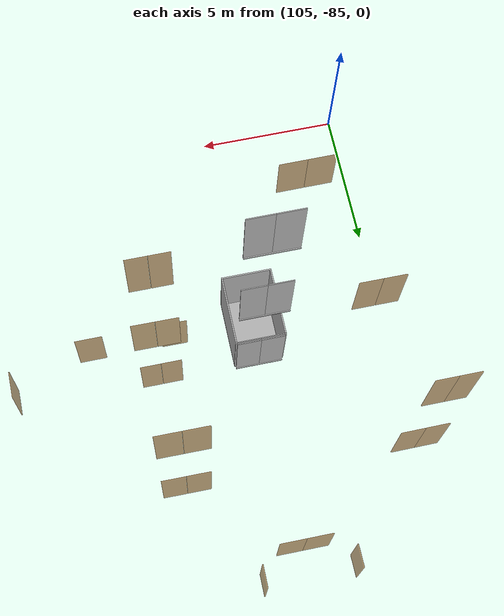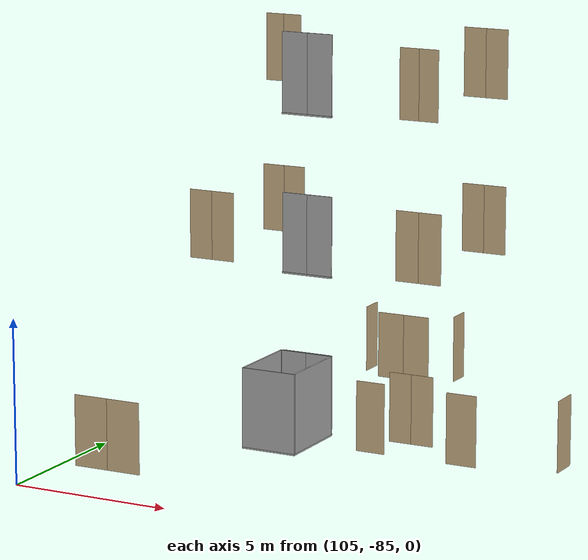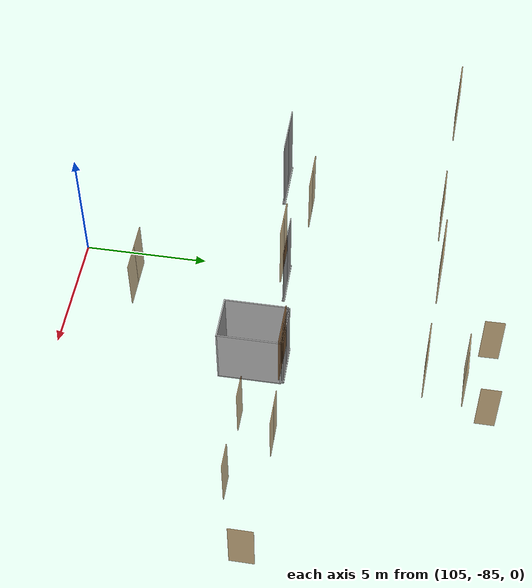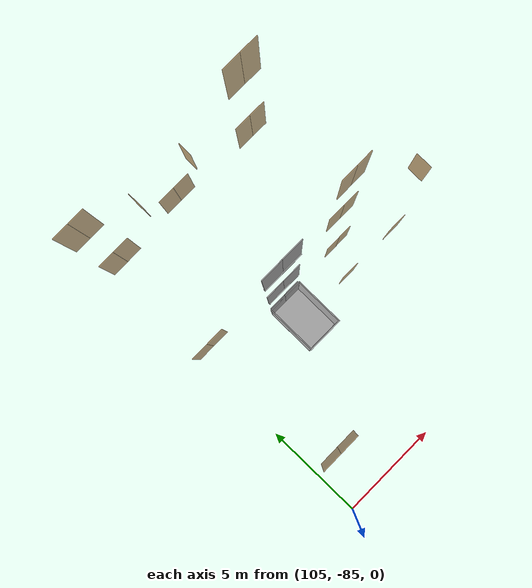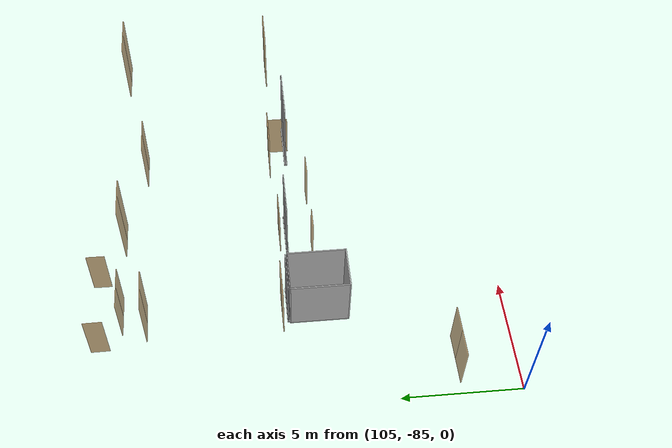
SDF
<sdf version="1.7">
 <world name="sim_world">
  <model name="p148">
   <pose>106.5831086486327 -82.50074442238754 0.0 0 0 -3.1354312213348186</pose>
   <link name="right">
    <pose>0.5509052453455562 0 1.11 0 0 0</pose>
    <visual name="right_visual">
     <geometry><box><size>1.0918104906911124 0.03 2.2</size></box></geometry>
     <material>
      <ambient>0.5 0.25 0 0.6</ambient>
      <diffuse>0.5 0.25 0 0.6</diffuse>
      <pbr><metal><metalness>0.0</metalness></metal></pbr>
     </material>
    </visual>
    <collision name="right_collision">
     <geometry><box><size>1.0918104906911124 0.03 2.2</size></box></geometry>
     <surface><contact><collide_bitmask>0x02</collide_bitmask></contact></surface>
    </collision>
    <inertial>
     <mass>50.0</mass>
     <inertia><ixx>20.17041666666667</ixx><iyy>25.133542281596537</iyy><izz>4.970625614929864</izz></inertia>
    </inertial>
   </link>
   <joint name="right_joint" type="revolute">
    <parent>world</parent>
    <child>right</child>
    <axis><xyz>0 0 -1</xyz><limit><lower>0</lower><upper>1.57</upper></limit></axis>
    <pose>0.5509052453455562 0 0 0 0 0</pose>
   </joint>
   <link name="left">
    <pose>-0.5509052453455562 0 1.11 0 0 0</pose>
    <visual name="left_visual">
     <geometry><box><size>1.0918104906911124 0.03 2.2</size></box></geometry>
     <material>
      <ambient>0.5 0.25 0 0.6</ambient>
      <diffuse>0.5 0.25 0 0.6</diffuse>
      <pbr><metal><metalness>0.0</metalness></metal></pbr>
     </material>
    </visual>
    <collision name="left_collision">
     <geometry><box><size>1.0918104906911124 0.03 2.2</size></box></geometry>
     <surface><contact><collide_bitmask>0x02</collide_bitmask></contact></surface>
    </collision>
    <inertial>
     <mass>50.0</mass>
     <inertia><ixx>20.17041666666667</ixx><iyy>25.133542281596537</iyy><izz>4.970625614929864</izz></inertia>
    </inertial>
   </link>
   <joint name="left_joint" type="revolute">
    <parent>world</parent>
    <child>left</child>
    <axis><xyz>0 0 -1</xyz><limit><lower>-1.57</lower><upper>0</upper></limit></axis>
    <pose>-0.5509052453455562 0 0 0 0 0</pose>
   </joint>
   <plugin name="register_component" filename="libregister_component.so">
    <component name="Door">
     <v_max_door>0.5</v_max_door>
     <a_max_door>0.3</a_max_door>
     <a_nom_door>0.15</a_nom_door>
     <dx_min_door>0.01</dx_min_door>
     <f_max_door>500.0</f_max_door>
     <ros_interface>true</ros_interface>
     <door name="p148" type="DoubleSwingDoor" left_joint_name="left_joint" right_joint_name="right_joint"/>
    </component>
   </plugin>
  </model>
  <model name="p151">
   <pose>109.79853559894529 -68.9253577671773 0.0 0 0 -0.0006766634620177149</pose>
   <link name="right">
    <pose>0.45975870500083904 0 1.11 0 0 0</pose>
    <visual name="right_visual">
     <geometry><box><size>0.9095174100016781 0.03 2.2</size></box></geometry>
     <material>
      <ambient>0.5 0.25 0 0.6</ambient>
      <diffuse>0.5 0.25 0 0.6</diffuse>
      <pbr><metal><metalness>0.0</metalness></metal></pbr>
     </material>
    </visual>
    <collision name="right_collision">
     <geometry><box><size>0.9095174100016781 0.03 2.2</size></box></geometry>
     <surface><contact><collide_bitmask>0x02</collide_bitmask></contact></surface>
    </collision>
    <inertial>
     <mass>50.0</mass>
     <inertia><ixx>20.17041666666667</ixx><iyy>23.613424662900673</iyy><izz>3.450507996234003</izz></inertia>
    </inertial>
   </link>
   <joint name="right_joint" type="revolute">
    <parent>world</parent>
    <child>right</child>
    <axis><xyz>0 0 -1</xyz><limit><lower>0</lower><upper>1.57</upper></limit></axis>
    <pose>0.45975870500083904 0 0 0 0 0</pose>
   </joint>
   <link name="left">
    <pose>-0.45975870500083904 0 1.11 0 0 0</pose>
    <visual name="left_visual">
     <geometry><box><size>0.9095174100016781 0.03 2.2</size></box></geometry>
     <material>
      <ambient>0.5 0.25 0 0.6</ambient>
      <diffuse>0.5 0.25 0 0.6</diffuse>
      <pbr><metal><metalness>0.0</metalness></metal></pbr>
     </material>
    </visual>
    <collision name="left_collision">
     <geometry><box><size>0.9095174100016781 0.03 2.2</size></box></geometry>
     <surface><contact><collide_bitmask>0x02</collide_bitmask></contact></surface>
    </collision>
    <inertial>
     <mass>50.0</mass>
     <inertia><ixx>20.17041666666667</ixx><iyy>23.613424662900673</iyy><izz>3.450507996234003</izz></inertia>
    </inertial>
   </link>
   <joint name="left_joint" type="revolute">
    <parent>world</parent>
    <child>left</child>
    <axis><xyz>0 0 -1</xyz><limit><lower>-1.57</lower><upper>0</upper></limit></axis>
    <pose>-0.45975870500083904 0 0 0 0 0</pose>
   </joint>
   <plugin name="register_component" filename="libregister_component.so">
    <component name="Door">
     <v_max_door>0.5</v_max_door>
     <a_max_door>0.3</a_max_door>
     <a_nom_door>0.15</a_nom_door>
     <dx_min_door>0.01</dx_min_door>
     <f_max_door>500.0</f_max_door>
     <ros_interface>true</ros_interface>
     <door name="p151" type="DoubleSwingDoor" left_joint_name="left_joint" right_joint_name="right_joint"/>
    </component>
   </plugin>
  </model>
  <model name="p152">
   <pose>108.20343841663959 -68.04873929661349 0.0 0 0 1.5801807099134662</pose>
   <link name="right">
    <pose>0 0 1.11 0 0 0</pose>
    <visual name="right_visual">
     <geometry><box><size>0.7809002815505367 0.03 2.2</size></box></geometry>
     <material>
      <ambient>0.5 0.25 0 0.6</ambient>
      <diffuse>0.5 0.25 0 0.6</diffuse>
      <pbr><metal><metalness>0.0</metalness></metal></pbr>
     </material>
    </visual>
    <collision name="right_collision">
     <geometry><box><size>0.7809002815505367 0.03 2.2</size></box></geometry>
     <surface><contact><collide_bitmask>0x02</collide_bitmask></contact></surface>
    </collision>
    <inertial>
     <mass>50.0</mass>
     <inertia><ixx>20.17041666666667</ixx><iyy>22.707521873857118</iyy><izz>2.544605207190448</izz></inertia>
    </inertial>
   </link>
   <joint name="right_joint" type="revolute">
    <parent>world</parent>
    <child>right</child>
    <axis><xyz>0 0 1</xyz><limit><lower>0</lower><upper>1.57</upper></limit></axis>
    <pose>0.39545014077526836 0 0 0 0 0</pose>
   </joint>
   <plugin name="register_component" filename="libregister_component.so">
    <component name="Door">
     <v_max_door>0.5</v_max_door>
     <a_max_door>0.3</a_max_door>
     <a_nom_door>0.15</a_nom_door>
     <dx_min_door>0.01</dx_min_door>
     <f_max_door>500.0</f_max_door>
     <ros_interface>true</ros_interface>
     <door name="p152" type="SwingDoor" left_joint_name="empty_joint" right_joint_name="right_joint"/>
    </component>
   </plugin>
  </model>
  <model name="p153">
   <pose>111.40163254422099 -68.03133981215376 0.0 0 0 1.563927516676294</pose>
   <link name="right">
    <pose>0 0 1.11 0 0 0</pose>
    <visual name="right_visual">
     <geometry><box><size>0.7664397557210464 0.03 2.2</size></box></geometry>
     <material>
      <ambient>0.5 0.25 0 0.6</ambient>
      <diffuse>0.5 0.25 0 0.6</diffuse>
      <pbr><metal><metalness>0.0</metalness></metal></pbr>
     </material>
    </visual>
    <collision name="right_collision">
     <geometry><box><size>0.7664397557210464 0.03 2.2</size></box></geometry>
     <surface><contact><collide_bitmask>0x02</collide_bitmask></contact></surface>
    </collision>
    <inertial>
     <mass>50.0</mass>
     <inertia><ixx>20.17041666666667</ixx><iyy>22.614291246457242</iyy><izz>2.4513745797905724</izz></inertia>
    </inertial>
   </link>
   <joint name="right_joint" type="revolute">
    <parent>world</parent>
    <child>right</child>
    <axis><xyz>0 0 -1</xyz><limit><lower>0</lower><upper>1.57</upper></limit></axis>
    <pose>0.3882198778605232 0 0 0 0 0</pose>
   </joint>
   <plugin name="register_component" filename="libregister_component.so">
    <component name="Door">
     <v_max_door>0.5</v_max_door>
     <a_max_door>0.3</a_max_door>
     <a_nom_door>0.15</a_nom_door>
     <dx_min_door>0.01</dx_min_door>
     <f_max_door>500.0</f_max_door>
     <ros_interface>true</ros_interface>
     <door name="p153" type="SwingDoor" left_joint_name="empty_joint" right_joint_name="right_joint"/>
    </component>
   </plugin>
  </model>
  <model name="p161">
   <pose>112.66685061183381 -77.1792354300614 0.0 0 0 3.135689201226102</pose>
   <link name="right">
    <pose>0 0 1.11 0 0 0</pose>
    <visual name="right_visual">
     <geometry><box><size>0.9348106919518754 0.03 2.2</size></box></geometry>
     <material>
      <ambient>0.5 0.25 0 0.6</ambient>
      <diffuse>0.5 0.25 0 0.6</diffuse>
      <pbr><metal><metalness>0.0</metalness></metal></pbr>
     </material>
    </visual>
    <collision name="right_collision">
     <geometry><box><size>0.9348106919518754 0.03 2.2</size></box></geometry>
     <surface><contact><collide_bitmask>0x02</collide_bitmask></contact></surface>
    </collision>
    <inertial>
     <mass>50.0</mass>
     <inertia><ixx>20.17041666666667</ixx><iyy>23.807795957448107</iyy><izz>3.644879290781434</izz></inertia>
    </inertial>
   </link>
   <joint name="right_joint" type="revolute">
    <parent>world</parent>
    <child>right</child>
    <axis><xyz>0 0 1</xyz><limit><lower>0</lower><upper>1.57</upper></limit></axis>
    <pose>0.4724053459759377 0 0 0 0 0</pose>
   </joint>
   <plugin name="register_component" filename="libregister_component.so">
    <component name="Door">
     <v_max_door>0.5</v_max_door>
     <a_max_door>0.3</a_max_door>
     <a_nom_door>0.15</a_nom_door>
     <dx_min_door>0.01</dx_min_door>
     <f_max_door>500.0</f_max_door>
     <ros_interface>true</ros_interface>
     <door name="p161" type="SwingDoor" left_joint_name="empty_joint" right_joint_name="right_joint"/>
    </component>
   </plugin>
  </model>
  <model name="p162">
   <pose>115.68781665728432 -77.18022428965074 0.0 0 0 0.0036736194667258727</pose>
   <link name="right">
    <pose>0 0 1.11 0 0 0</pose>
    <visual name="right_visual">
     <geometry><box><size>0.9699331330222406 0.03 2.2</size></box></geometry>
     <material>
      <ambient>0.5 0.25 0 0.6</ambient>
      <diffuse>0.5 0.25 0 0.6</diffuse>
      <pbr><metal><metalness>0.0</metalness></metal></pbr>
     </material>
    </visual>
    <collision name="right_collision">
     <geometry><box><size>0.9699331330222406 0.03 2.2</size></box></geometry>
     <surface><contact><collide_bitmask>0x02</collide_bitmask></contact></surface>
    </collision>
    <inertial>
     <mass>50.0</mass>
     <inertia><ixx>20.17041666666667</ixx><iyy>24.086542843893085</iyy><izz>3.923626177226415</izz></inertia>
    </inertial>
   </link>
   <joint name="right_joint" type="revolute">
    <parent>world</parent>
    <child>right</child>
    <axis><xyz>0 0 -1</xyz><limit><lower>0</lower><upper>1.57</upper></limit></axis>
    <pose>0.4899665665111203 0 0 0 0 0</pose>
   </joint>
   <plugin name="register_component" filename="libregister_component.so">
    <component name="Door">
     <v_max_door>0.5</v_max_door>
     <a_max_door>0.3</a_max_door>
     <a_nom_door>0.15</a_nom_door>
     <dx_min_door>0.01</dx_min_door>
     <f_max_door>500.0</f_max_door>
     <ros_interface>true</ros_interface>
     <door name="p162" type="SwingDoor" left_joint_name="empty_joint" right_joint_name="right_joint"/>
    </component>
   </plugin>
  </model>
  <model name="p163">
   <pose>118.55498725963685 -76.09476756244266 0.0 0 0 1.566616148582388</pose>
   <link name="right">
    <pose>0 0 1.11 0 0 0</pose>
    <visual name="right_visual">
     <geometry><box><size>0.9202916750494727 0.03 2.2</size></box></geometry>
     <material>
      <ambient>0.5 0.25 0 0.6</ambient>
      <diffuse>0.5 0.25 0 0.6</diffuse>
      <pbr><metal><metalness>0.0</metalness></metal></pbr>
     </material>
    </visual>
    <collision name="right_collision">
     <geometry><box><size>0.9202916750494727 0.03 2.2</size></box></geometry>
     <surface><contact><collide_bitmask>0x02</collide_bitmask></contact></surface>
    </collision>
    <inertial>
     <mass>50.0</mass>
     <inertia><ixx>20.17041666666667</ixx><iyy>23.695569863189025</iyy><izz>3.532653196522352</izz></inertia>
    </inertial>
   </link>
   <joint name="right_joint" type="revolute">
    <parent>world</parent>
    <child>right</child>
    <axis><xyz>0 0 -1</xyz><limit><lower>0</lower><upper>1.57</upper></limit></axis>
    <pose>0.46514583752473637 0 0 0 0 0</pose>
   </joint>
   <plugin name="register_component" filename="libregister_component.so">
    <component name="Door">
     <v_max_door>0.5</v_max_door>
     <a_max_door>0.3</a_max_door>
     <a_nom_door>0.15</a_nom_door>
     <dx_min_door>0.01</dx_min_door>
     <f_max_door>500.0</f_max_door>
     <ros_interface>true</ros_interface>
     <door name="p163" type="SwingDoor" left_joint_name="empty_joint" right_joint_name="right_joint"/>
    </component>
   </plugin>
  </model>
  <model name="p164">
   <pose>113.37044087582598 -75.78825442209126 0.0 0 0 0.00207230076974979</pose>
   <link name="right">
    <pose>0.36726768439817065 0 1.11 0 0 0</pose>
    <visual name="right_visual">
     <geometry><box><size>0.7245353687963413 0.03 2.2</size></box></geometry>
     <material>
      <ambient>0.5 0.25 0 0.6</ambient>
      <diffuse>0.5 0.25 0 0.6</diffuse>
      <pbr><metal><metalness>0.0</metalness></metal></pbr>
     </material>
    </visual>
    <collision name="right_collision">
     <geometry><box><size>0.7245353687963413 0.03 2.2</size></box></geometry>
     <surface><contact><collide_bitmask>0x02</collide_bitmask></contact></surface>
    </collision>
    <inertial>
     <mass>50.0</mass>
     <inertia><ixx>20.17041666666667</ixx><iyy>22.35396458598688</iyy><izz>2.1910479193202095</izz></inertia>
    </inertial>
   </link>
   <joint name="right_joint" type="revolute">
    <parent>world</parent>
    <child>right</child>
    <axis><xyz>0 0 -1</xyz><limit><lower>0</lower><upper>1.57</upper></limit></axis>
    <pose>0.36726768439817065 0 0 0 0 0</pose>
   </joint>
   <link name="left">
    <pose>-0.36726768439817065 0 1.11 0 0 0</pose>
    <visual name="left_visual">
     <geometry><box><size>0.7245353687963413 0.03 2.2</size></box></geometry>
     <material>
      <ambient>0.5 0.25 0 0.6</ambient>
      <diffuse>0.5 0.25 0 0.6</diffuse>
      <pbr><metal><metalness>0.0</metalness></metal></pbr>
     </material>
    </visual>
    <collision name="left_collision">
     <geometry><box><size>0.7245353687963413 0.03 2.2</size></box></geometry>
     <surface><contact><collide_bitmask>0x02</collide_bitmask></contact></surface>
    </collision>
    <inertial>
     <mass>50.0</mass>
     <inertia><ixx>20.17041666666667</ixx><iyy>22.35396458598688</iyy><izz>2.1910479193202095</izz></inertia>
    </inertial>
   </link>
   <joint name="left_joint" type="revolute">
    <parent>world</parent>
    <child>left</child>
    <axis><xyz>0 0 -1</xyz><limit><lower>-1.57</lower><upper>0</upper></limit></axis>
    <pose>-0.36726768439817065 0 0 0 0 0</pose>
   </joint>
   <plugin name="register_component" filename="libregister_component.so">
    <component name="Door">
     <v_max_door>0.5</v_max_door>
     <a_max_door>0.3</a_max_door>
     <a_nom_door>0.15</a_nom_door>
     <dx_min_door>0.01</dx_min_door>
     <f_max_door>500.0</f_max_door>
     <ros_interface>true</ros_interface>
     <door name="p164" type="DoubleSwingDoor" left_joint_name="left_joint" right_joint_name="right_joint"/>
    </component>
   </plugin>
  </model>
  <model name="puerta93">
   <pose>106.21159632392053 -70.6005983313787 5.0 0 0 -3.134130843508274</pose>
   <link name="right">
    <pose>0.37554237550020714 0 1.11 0 0 0</pose>
    <visual name="right_visual">
     <geometry><box><size>0.7410847510004143 0.03 2.2</size></box></geometry>
     <material>
      <ambient>0.5 0.25 0 0.6</ambient>
      <diffuse>0.5 0.25 0 0.6</diffuse>
      <pbr><metal><metalness>0.0</metalness></metal></pbr>
     </material>
    </visual>
    <collision name="right_collision">
     <geometry><box><size>0.7410847510004143 0.03 2.2</size></box></geometry>
     <surface><contact><collide_bitmask>0x02</collide_bitmask></contact></surface>
    </collision>
    <inertial>
     <mass>50.0</mass>
     <inertia><ixx>20.17041666666667</ixx><iyy>22.455027534022282</iyy><izz>2.2921108673556088</izz></inertia>
    </inertial>
   </link>
   <joint name="right_joint" type="revolute">
    <parent>world</parent>
    <child>right</child>
    <axis><xyz>0 0 -1</xyz><limit><lower>0</lower><upper>1.57</upper></limit></axis>
    <pose>0.37554237550020714 0 0 0 0 0</pose>
   </joint>
   <link name="left">
    <pose>-0.37554237550020714 0 1.11 0 0 0</pose>
    <visual name="left_visual">
     <geometry><box><size>0.7410847510004143 0.03 2.2</size></box></geometry>
     <material>
      <ambient>0.5 0.25 0 0.6</ambient>
      <diffuse>0.5 0.25 0 0.6</diffuse>
      <pbr><metal><metalness>0.0</metalness></metal></pbr>
     </material>
    </visual>
    <collision name="left_collision">
     <geometry><box><size>0.7410847510004143 0.03 2.2</size></box></geometry>
     <surface><contact><collide_bitmask>0x02</collide_bitmask></contact></surface>
    </collision>
    <inertial>
     <mass>50.0</mass>
     <inertia><ixx>20.17041666666667</ixx><iyy>22.455027534022282</iyy><izz>2.2921108673556088</izz></inertia>
    </inertial>
   </link>
   <joint name="left_joint" type="revolute">
    <parent>world</parent>
    <child>left</child>
    <axis><xyz>0 0 -1</xyz><limit><lower>-1.57</lower><upper>0</upper></limit></axis>
    <pose>-0.37554237550020714 0 0 0 0 0</pose>
   </joint>
   <plugin name="register_component" filename="libregister_component.so">
    <component name="Door">
     <v_max_door>0.5</v_max_door>
     <a_max_door>0.3</a_max_door>
     <a_nom_door>0.15</a_nom_door>
     <dx_min_door>0.01</dx_min_door>
     <f_max_door>500.0</f_max_door>
     <ros_interface>true</ros_interface>
     <door name="puerta93" type="DoubleSwingDoor" left_joint_name="left_joint" right_joint_name="right_joint"/>
    </component>
   </plugin>
  </model>
  <model name="puerta94">
   <pose>113.39556457294628 -70.59194244497277 5.0 0 0 3.138128179897668</pose>
   <link name="right">
    <pose>0.37475694106194346 0 1.11 0 0 0</pose>
    <visual name="right_visual">
     <geometry><box><size>0.7395138821238869 0.03 2.2</size></box></geometry>
     <material>
      <ambient>0.5 0.25 0 0.6</ambient>
      <diffuse>0.5 0.25 0 0.6</diffuse>
      <pbr><metal><metalness>0.0</metalness></metal></pbr>
     </material>
    </visual>
    <collision name="right_collision">
     <geometry><box><size>0.7395138821238869 0.03 2.2</size></box></geometry>
     <surface><contact><collide_bitmask>0x02</collide_bitmask></contact></surface>
    </collision>
    <inertial>
     <mass>50.0</mass>
     <inertia><ixx>20.17041666666667</ixx><iyy>22.445336591058098</iyy><izz>2.2824199243914256</izz></inertia>
    </inertial>
   </link>
   <joint name="right_joint" type="revolute">
    <parent>world</parent>
    <child>right</child>
    <axis><xyz>0 0 -1</xyz><limit><lower>0</lower><upper>1.57</upper></limit></axis>
    <pose>0.37475694106194346 0 0 0 0 0</pose>
   </joint>
   <link name="left">
    <pose>-0.37475694106194346 0 1.11 0 0 0</pose>
    <visual name="left_visual">
     <geometry><box><size>0.7395138821238869 0.03 2.2</size></box></geometry>
     <material>
      <ambient>0.5 0.25 0 0.6</ambient>
      <diffuse>0.5 0.25 0 0.6</diffuse>
      <pbr><metal><metalness>0.0</metalness></metal></pbr>
     </material>
    </visual>
    <collision name="left_collision">
     <geometry><box><size>0.7395138821238869 0.03 2.2</size></box></geometry>
     <surface><contact><collide_bitmask>0x02</collide_bitmask></contact></surface>
    </collision>
    <inertial>
     <mass>50.0</mass>
     <inertia><ixx>20.17041666666667</ixx><iyy>22.445336591058098</iyy><izz>2.2824199243914256</izz></inertia>
    </inertial>
   </link>
   <joint name="left_joint" type="revolute">
    <parent>world</parent>
    <child>left</child>
    <axis><xyz>0 0 -1</xyz><limit><lower>-1.57</lower><upper>0</upper></limit></axis>
    <pose>-0.37475694106194346 0 0 0 0 0</pose>
   </joint>
   <plugin name="register_component" filename="libregister_component.so">
    <component name="Door">
     <v_max_door>0.5</v_max_door>
     <a_max_door>0.3</a_max_door>
     <a_nom_door>0.15</a_nom_door>
     <dx_min_door>0.01</dx_min_door>
     <f_max_door>500.0</f_max_door>
     <ros_interface>true</ros_interface>
     <door name="puerta94" type="DoubleSwingDoor" left_joint_name="left_joint" right_joint_name="right_joint"/>
    </component>
   </plugin>
  </model>
  <model name="puerta96">
   <pose>106.22819702837108 -75.4585305810519 5.0 0 0 0.00015305860082185011</pose>
   <link name="right">
    <pose>0.3886947847481763 0 1.11 0 0 0</pose>
    <visual name="right_visual">
     <geometry><box><size>0.7673895694963526 0.03 2.2</size></box></geometry>
     <material>
      <ambient>0.5 0.25 0 0.6</ambient>
      <diffuse>0.5 0.25 0 0.6</diffuse>
      <pbr><metal><metalness>0.0</metalness></metal></pbr>
     </material>
    </visual>
    <collision name="right_collision">
     <geometry><box><size>0.7673895694963526 0.03 2.2</size></box></geometry>
     <surface><contact><collide_bitmask>0x02</collide_bitmask></contact></surface>
    </collision>
    <inertial>
     <mass>50.0</mass>
     <inertia><ixx>20.17041666666667</ixx><iyy>22.62036146404916</iyy><izz>2.457444797382489</izz></inertia>
    </inertial>
   </link>
   <joint name="right_joint" type="revolute">
    <parent>world</parent>
    <child>right</child>
    <axis><xyz>0 0 -1</xyz><limit><lower>0</lower><upper>1.57</upper></limit></axis>
    <pose>0.3886947847481763 0 0 0 0 0</pose>
   </joint>
   <link name="left">
    <pose>-0.3886947847481763 0 1.11 0 0 0</pose>
    <visual name="left_visual">
     <geometry><box><size>0.7673895694963526 0.03 2.2</size></box></geometry>
     <material>
      <ambient>0.5 0.25 0 0.6</ambient>
      <diffuse>0.5 0.25 0 0.6</diffuse>
      <pbr><metal><metalness>0.0</metalness></metal></pbr>
     </material>
    </visual>
    <collision name="left_collision">
     <geometry><box><size>0.7673895694963526 0.03 2.2</size></box></geometry>
     <surface><contact><collide_bitmask>0x02</collide_bitmask></contact></surface>
    </collision>
    <inertial>
     <mass>50.0</mass>
     <inertia><ixx>20.17041666666667</ixx><iyy>22.62036146404916</iyy><izz>2.457444797382489</izz></inertia>
    </inertial>
   </link>
   <joint name="left_joint" type="revolute">
    <parent>world</parent>
    <child>left</child>
    <axis><xyz>0 0 -1</xyz><limit><lower>-1.57</lower><upper>0</upper></limit></axis>
    <pose>-0.3886947847481763 0 0 0 0 0</pose>
   </joint>
   <plugin name="register_component" filename="libregister_component.so">
    <component name="Door">
     <v_max_door>0.5</v_max_door>
     <a_max_door>0.3</a_max_door>
     <a_nom_door>0.15</a_nom_door>
     <dx_min_door>0.01</dx_min_door>
     <f_max_door>500.0</f_max_door>
     <ros_interface>true</ros_interface>
     <door name="puerta96" type="DoubleSwingDoor" left_joint_name="left_joint" right_joint_name="right_joint"/>
    </component>
   </plugin>
  </model>
  <model name="puerta97">
   <pose>113.41710202723338 -75.46894253042993 5.0 0 0 -0.006241201531537121</pose>
   <link name="right">
    <pose>0.3805906354318934 0 1.11 0 0 0</pose>
    <visual name="right_visual">
     <geometry><box><size>0.7511812708637868 0.03 2.2</size></box></geometry>
     <material>
      <ambient>0.5 0.25 0 0.6</ambient>
      <diffuse>0.5 0.25 0 0.6</diffuse>
      <pbr><metal><metalness>0.0</metalness></metal></pbr>
     </material>
    </visual>
    <collision name="right_collision">
     <geometry><box><size>0.7511812708637868 0.03 2.2</size></box></geometry>
     <surface><contact><collide_bitmask>0x02</collide_bitmask></contact></surface>
    </collision>
    <inertial>
     <mass>50.0</mass>
     <inertia><ixx>20.17041666666667</ixx><iyy>22.51780542373556</iyy><izz>2.3548887570688914</izz></inertia>
    </inertial>
   </link>
   <joint name="right_joint" type="revolute">
    <parent>world</parent>
    <child>right</child>
    <axis><xyz>0 0 -1</xyz><limit><lower>0</lower><upper>1.57</upper></limit></axis>
    <pose>0.3805906354318934 0 0 0 0 0</pose>
   </joint>
   <link name="left">
    <pose>-0.3805906354318934 0 1.11 0 0 0</pose>
    <visual name="left_visual">
     <geometry><box><size>0.7511812708637868 0.03 2.2</size></box></geometry>
     <material>
      <ambient>0.5 0.25 0 0.6</ambient>
      <diffuse>0.5 0.25 0 0.6</diffuse>
      <pbr><metal><metalness>0.0</metalness></metal></pbr>
     </material>
    </visual>
    <collision name="left_collision">
     <geometry><box><size>0.7511812708637868 0.03 2.2</size></box></geometry>
     <surface><contact><collide_bitmask>0x02</collide_bitmask></contact></surface>
    </collision>
    <inertial>
     <mass>50.0</mass>
     <inertia><ixx>20.17041666666667</ixx><iyy>22.51780542373556</iyy><izz>2.3548887570688914</izz></inertia>
    </inertial>
   </link>
   <joint name="left_joint" type="revolute">
    <parent>world</parent>
    <child>left</child>
    <axis><xyz>0 0 -1</xyz><limit><lower>-1.57</lower><upper>0</upper></limit></axis>
    <pose>-0.3805906354318934 0 0 0 0 0</pose>
   </joint>
   <plugin name="register_component" filename="libregister_component.so">
    <component name="Door">
     <v_max_door>0.5</v_max_door>
     <a_max_door>0.3</a_max_door>
     <a_nom_door>0.15</a_nom_door>
     <dx_min_door>0.01</dx_min_door>
     <f_max_door>500.0</f_max_door>
     <ros_interface>true</ros_interface>
     <door name="puerta97" type="DoubleSwingDoor" left_joint_name="left_joint" right_joint_name="right_joint"/>
    </component>
   </plugin>
  </model>
  <model name="puerta167">
   <pose>106.2097941253398 -70.60033349005184 10.0 0 0 -3.1395299909386436</pose>
   <link name="right">
    <pose>0.3174307685407652 0 1.11 0 0 0</pose>
    <visual name="right_visual">
     <geometry><box><size>0.6248615370815304 0.03 2.2</size></box></geometry>
     <material>
      <ambient>0.5 0.25 0 0.6</ambient>
      <diffuse>0.5 0.25 0 0.6</diffuse>
      <pbr><metal><metalness>0.0</metalness></metal></pbr>
     </material>
    </visual>
    <collision name="right_collision">
     <geometry><box><size>0.6248615370815304 0.03 2.2</size></box></geometry>
     <surface><contact><collide_bitmask>0x02</collide_bitmask></contact></surface>
    </collision>
    <inertial>
     <mass>50.0</mass>
     <inertia><ixx>20.17041666666667</ixx><iyy>21.793549752182894</iyy><izz>1.63063308551622</izz></inertia>
    </inertial>
   </link>
   <joint name="right_joint" type="revolute">
    <parent>world</parent>
    <child>right</child>
    <axis><xyz>0 0 -1</xyz><limit><lower>0</lower><upper>1.57</upper></limit></axis>
    <pose>0.3174307685407652 0 0 0 0 0</pose>
   </joint>
   <link name="left">
    <pose>-0.3174307685407652 0 1.11 0 0 0</pose>
    <visual name="left_visual">
     <geometry><box><size>0.6248615370815304 0.03 2.2</size></box></geometry>
     <material>
      <ambient>0.5 0.25 0 0.6</ambient>
      <diffuse>0.5 0.25 0 0.6</diffuse>
      <pbr><metal><metalness>0.0</metalness></metal></pbr>
     </material>
    </visual>
    <collision name="left_collision">
     <geometry><box><size>0.6248615370815304 0.03 2.2</size></box></geometry>
     <surface><contact><collide_bitmask>0x02</collide_bitmask></contact></surface>
    </collision>
    <inertial>
     <mass>50.0</mass>
     <inertia><ixx>20.17041666666667</ixx><iyy>21.793549752182894</iyy><izz>1.63063308551622</izz></inertia>
    </inertial>
   </link>
   <joint name="left_joint" type="revolute">
    <parent>world</parent>
    <child>left</child>
    <axis><xyz>0 0 -1</xyz><limit><lower>-1.57</lower><upper>0</upper></limit></axis>
    <pose>-0.3174307685407652 0 0 0 0 0</pose>
   </joint>
   <plugin name="register_component" filename="libregister_component.so">
    <component name="Door">
     <v_max_door>0.5</v_max_door>
     <a_max_door>0.3</a_max_door>
     <a_nom_door>0.15</a_nom_door>
     <dx_min_door>0.01</dx_min_door>
     <f_max_door>500.0</f_max_door>
     <ros_interface>true</ros_interface>
     <door name="puerta167" type="DoubleSwingDoor" left_joint_name="left_joint" right_joint_name="right_joint"/>
    </component>
   </plugin>
  </model>
  <model name="puerta168">
   <pose>113.3964467068849 -70.59225376708427 10.0 0 0 3.138129890374547</pose>
   <link name="right">
    <pose>0.3747613210734614 0 1.11 0 0 0</pose>
    <visual name="right_visual">
     <geometry><box><size>0.7395226421469228 0.03 2.2</size></box></geometry>
     <material>
      <ambient>0.5 0.25 0 0.6</ambient>
      <diffuse>0.5 0.25 0 0.6</diffuse>
      <pbr><metal><metalness>0.0</metalness></metal></pbr>
     </material>
    </visual>
    <collision name="right_collision">
     <geometry><box><size>0.7395226421469228 0.03 2.2</size></box></geometry>
     <surface><contact><collide_bitmask>0x02</collide_bitmask></contact></surface>
    </collision>
    <inertial>
     <mass>50.0</mass>
     <inertia><ixx>20.17041666666667</ixx><iyy>22.445390576033194</iyy><izz>2.2824739093665234</izz></inertia>
    </inertial>
   </link>
   <joint name="right_joint" type="revolute">
    <parent>world</parent>
    <child>right</child>
    <axis><xyz>0 0 -1</xyz><limit><lower>0</lower><upper>1.57</upper></limit></axis>
    <pose>0.3747613210734614 0 0 0 0 0</pose>
   </joint>
   <link name="left">
    <pose>-0.3747613210734614 0 1.11 0 0 0</pose>
    <visual name="left_visual">
     <geometry><box><size>0.7395226421469228 0.03 2.2</size></box></geometry>
     <material>
      <ambient>0.5 0.25 0 0.6</ambient>
      <diffuse>0.5 0.25 0 0.6</diffuse>
      <pbr><metal><metalness>0.0</metalness></metal></pbr>
     </material>
    </visual>
    <collision name="left_collision">
     <geometry><box><size>0.7395226421469228 0.03 2.2</size></box></geometry>
     <surface><contact><collide_bitmask>0x02</collide_bitmask></contact></surface>
    </collision>
    <inertial>
     <mass>50.0</mass>
     <inertia><ixx>20.17041666666667</ixx><iyy>22.445390576033194</iyy><izz>2.2824739093665234</izz></inertia>
    </inertial>
   </link>
   <joint name="left_joint" type="revolute">
    <parent>world</parent>
    <child>left</child>
    <axis><xyz>0 0 -1</xyz><limit><lower>-1.57</lower><upper>0</upper></limit></axis>
    <pose>-0.3747613210734614 0 0 0 0 0</pose>
   </joint>
   <plugin name="register_component" filename="libregister_component.so">
    <component name="Door">
     <v_max_door>0.5</v_max_door>
     <a_max_door>0.3</a_max_door>
     <a_nom_door>0.15</a_nom_door>
     <dx_min_door>0.01</dx_min_door>
     <f_max_door>500.0</f_max_door>
     <ros_interface>true</ros_interface>
     <door name="puerta168" type="DoubleSwingDoor" left_joint_name="left_joint" right_joint_name="right_joint"/>
    </component>
   </plugin>
  </model>
  <model name="puerta171">
   <pose>113.38715420206886 -75.45802542857646 10.0 0 0 0.0001547690777092381</pose>
   <link name="right">
    <pose>0.3217084503677288 0 1.11 0 0 0</pose>
    <visual name="right_visual">
     <geometry><box><size>0.6334169007354576 0.03 2.2</size></box></geometry>
     <material>
      <ambient>0.5 0.25 0 0.6</ambient>
      <diffuse>0.5 0.25 0 0.6</diffuse>
      <pbr><metal><metalness>0.0</metalness></metal></pbr>
     </material>
    </visual>
    <collision name="right_collision">
     <geometry><box><size>0.6334169007354576 0.03 2.2</size></box></geometry>
     <surface><contact><collide_bitmask>0x02</collide_bitmask></contact></surface>
    </collision>
    <inertial>
     <mass>50.0</mass>
     <inertia><ixx>20.17041666666667</ixx><iyy>21.838404042238807</iyy><izz>1.675487375572136</izz></inertia>
    </inertial>
   </link>
   <joint name="right_joint" type="revolute">
    <parent>world</parent>
    <child>right</child>
    <axis><xyz>0 0 -1</xyz><limit><lower>0</lower><upper>1.57</upper></limit></axis>
    <pose>0.3217084503677288 0 0 0 0 0</pose>
   </joint>
   <link name="left">
    <pose>-0.3217084503677288 0 1.11 0 0 0</pose>
    <visual name="left_visual">
     <geometry><box><size>0.6334169007354576 0.03 2.2</size></box></geometry>
     <material>
      <ambient>0.5 0.25 0 0.6</ambient>
      <diffuse>0.5 0.25 0 0.6</diffuse>
      <pbr><metal><metalness>0.0</metalness></metal></pbr>
     </material>
    </visual>
    <collision name="left_collision">
     <geometry><box><size>0.6334169007354576 0.03 2.2</size></box></geometry>
     <surface><contact><collide_bitmask>0x02</collide_bitmask></contact></surface>
    </collision>
    <inertial>
     <mass>50.0</mass>
     <inertia><ixx>20.17041666666667</ixx><iyy>21.838404042238807</iyy><izz>1.675487375572136</izz></inertia>
    </inertial>
   </link>
   <joint name="left_joint" type="revolute">
    <parent>world</parent>
    <child>left</child>
    <axis><xyz>0 0 -1</xyz><limit><lower>-1.57</lower><upper>0</upper></limit></axis>
    <pose>-0.3217084503677288 0 0 0 0 0</pose>
   </joint>
   <plugin name="register_component" filename="libregister_component.so">
    <component name="Door">
     <v_max_door>0.5</v_max_door>
     <a_max_door>0.3</a_max_door>
     <a_nom_door>0.15</a_nom_door>
     <dx_min_door>0.01</dx_min_door>
     <f_max_door>500.0</f_max_door>
     <ros_interface>true</ros_interface>
     <door name="puerta171" type="DoubleSwingDoor" left_joint_name="left_joint" right_joint_name="right_joint"/>
    </component>
   </plugin>
  </model>
  <model name="ShaftDoor_right_lab_lift_L0_right_lab_lift_door">
   <pose>109.8123743946218 -75.85762021518566 0.0 0 0 0.0</pose>
   <link name="right_door">
    <pose>0.425 0 1.25 0 0 0</pose>
    <visual name="right_door_visual">
     <geometry><box><size>0.85 0.03 2.5</size></box></geometry>
     <material>
      <ambient>0.5 0.5 0.5 1</ambient>
      <diffuse>0.7 0.7 0.7 1</diffuse>
      <specular>0.6 0.6 0.6 1</specular>
      <emissive>0.1 0.1 0.1 1</emissive>
     </material>
    </visual>
    <collision name="right_door_collision">
     <geometry><box><size>0.85 0.03 2.5</size></box></geometry>
     <surface><contact><collide_bitmask>0x02</collide_bitmask></contact></surface>
    </collision>
   </link>
   <link name="left_door">
    <pose>-0.425 0 1.25 0 0 0</pose>
    <visual name="left_door_visual">
     <geometry><box><size>0.85 0.03 2.5</size></box></geometry>
     <material>
      <ambient>0.5 0.5 0.5 1</ambient>
      <diffuse>0.7 0.7 0.7 1</diffuse>
      <specular>0.6 0.6 0.6 1</specular>
      <emissive>0.1 0.1 0.1 1</emissive>
     </material>
    </visual>
    <collision name="left_door_collision">
     <geometry><box><size>0.85 0.03 2.5</size></box></geometry>
     <surface><contact><collide_bitmask>0x02</collide_bitmask></contact></surface>
    </collision>
   </link>
   <joint name="right_joint" type="prismatic">
    <parent>world</parent>
    <child>right_door</child>
    <axis><xyz>1 0 0</xyz><limit><lower>0</lower><upper>0.85</upper></limit></axis>
   </joint>
   <joint name="left_joint" type="prismatic">
    <parent>world</parent>
    <child>left_door</child>
    <axis><xyz>1 0 0</xyz><limit><lower>-0.85</lower><upper>0</upper></limit></axis>
   </joint>
   <link name="ramp">
    <pose>0 0 -0.025 0 0 0</pose>
    <visual name="ramp_visual">
     <geometry><box><size>1.7 0.1 0.05</size></box></geometry>
     <material>
      <ambient>0.5 0.5 0.5 1</ambient>
      <diffuse>0.7 0.7 0.7 1</diffuse>
      <specular>0.6 0.6 0.6 1</specular>
      <emissive>0.1 0.1 0.1 1</emissive>
     </material>
    </visual>
    <collision name="ramp_collision">
     <geometry><box><size>1.7 0.1 0.05</size></box></geometry>
     <surface><contact><collide_bitmask>0x02</collide_bitmask></contact></surface>
    </collision>
   </link>
   <joint name="ramp_joint" type="fixed"><parent>world</parent><child>ramp</child></joint>
   <plugin name="register_component" filename="libregister_component.so">
    <component name="Door">
     <v_max_door>0.3</v_max_door>
     <a_max_door>0.2</a_max_door>
     <a_nom_door>0.1</a_nom_door>
     <dx_min_door>0.0001</dx_min_door>
     <f_max_door>35.0</f_max_door>
     <door left_joint_name="left_joint" name="ShaftDoor_right_lab_lift_L0_right_lab_lift_door" right_joint_name="right_joint" type="DoubleSlidingDoor"/>
    </component>
   </plugin>
  </model>
  <model name="ShaftDoor_right_lab_lift_L1_right_lab_lift_door">
   <pose>109.8123743946218 -75.85762021518566 5.0 0 0 0.0</pose>
   <link name="right_door">
    <pose>0.425 0 1.25 0 0 0</pose>
    <visual name="right_door_visual">
     <geometry><box><size>0.85 0.03 2.5</size></box></geometry>
     <material>
      <ambient>0.5 0.5 0.5 1</ambient>
      <diffuse>0.7 0.7 0.7 1</diffuse>
      <specular>0.6 0.6 0.6 1</specular>
      <emissive>0.1 0.1 0.1 1</emissive>
     </material>
    </visual>
    <collision name="right_door_collision">
     <geometry><box><size>0.85 0.03 2.5</size></box></geometry>
     <surface><contact><collide_bitmask>0x02</collide_bitmask></contact></surface>
    </collision>
   </link>
   <link name="left_door">
    <pose>-0.425 0 1.25 0 0 0</pose>
    <visual name="left_door_visual">
     <geometry><box><size>0.85 0.03 2.5</size></box></geometry>
     <material>
      <ambient>0.5 0.5 0.5 1</ambient>
      <diffuse>0.7 0.7 0.7 1</diffuse>
      <specular>0.6 0.6 0.6 1</specular>
      <emissive>0.1 0.1 0.1 1</emissive>
     </material>
    </visual>
    <collision name="left_door_collision">
     <geometry><box><size>0.85 0.03 2.5</size></box></geometry>
     <surface><contact><collide_bitmask>0x02</collide_bitmask></contact></surface>
    </collision>
   </link>
   <joint name="right_joint" type="prismatic">
    <parent>world</parent>
    <child>right_door</child>
    <axis><xyz>1 0 0</xyz><limit><lower>0</lower><upper>0.85</upper></limit></axis>
   </joint>
   <joint name="left_joint" type="prismatic">
    <parent>world</parent>
    <child>left_door</child>
    <axis><xyz>1 0 0</xyz><limit><lower>-0.85</lower><upper>0</upper></limit></axis>
   </joint>
   <link name="ramp">
    <pose>0 0 -0.025 0 0 0</pose>
    <visual name="ramp_visual">
     <geometry><box><size>1.7 0.1 0.05</size></box></geometry>
     <material>
      <ambient>0.5 0.5 0.5 1</ambient>
      <diffuse>0.7 0.7 0.7 1</diffuse>
      <specular>0.6 0.6 0.6 1</specular>
      <emissive>0.1 0.1 0.1 1</emissive>
     </material>
    </visual>
    <collision name="ramp_collision">
     <geometry><box><size>1.7 0.1 0.05</size></box></geometry>
     <surface><contact><collide_bitmask>0x02</collide_bitmask></contact></surface>
    </collision>
   </link>
   <joint name="ramp_joint" type="fixed"><parent>world</parent><child>ramp</child></joint>
   <plugin name="register_component" filename="libregister_component.so">
    <component name="Door">
     <v_max_door>0.3</v_max_door>
     <a_max_door>0.2</a_max_door>
     <a_nom_door>0.1</a_nom_door>
     <dx_min_door>0.0001</dx_min_door>
     <f_max_door>35.0</f_max_door>
     <door left_joint_name="left_joint" name="ShaftDoor_right_lab_lift_L1_right_lab_lift_door" right_joint_name="right_joint" type="DoubleSlidingDoor"/>
    </component>
   </plugin>
  </model>
  <model name="ShaftDoor_right_lab_lift_L2_right_lab_lift_door">
   <pose>109.8123743946218 -75.85762021518566 10.0 0 0 0.0</pose>
   <link name="right_door">
    <pose>0.425 0 1.25 0 0 0</pose>
    <visual name="right_door_visual">
     <geometry><box><size>0.85 0.03 2.5</size></box></geometry>
     <material>
      <ambient>0.5 0.5 0.5 1</ambient>
      <diffuse>0.7 0.7 0.7 1</diffuse>
      <specular>0.6 0.6 0.6 1</specular>
      <emissive>0.1 0.1 0.1 1</emissive>
     </material>
    </visual>
    <collision name="right_door_collision">
     <geometry><box><size>0.85 0.03 2.5</size></box></geometry>
     <surface><contact><collide_bitmask>0x02</collide_bitmask></contact></surface>
    </collision>
   </link>
   <link name="left_door">
    <pose>-0.425 0 1.25 0 0 0</pose>
    <visual name="left_door_visual">
     <geometry><box><size>0.85 0.03 2.5</size></box></geometry>
     <material>
      <ambient>0.5 0.5 0.5 1</ambient>
      <diffuse>0.7 0.7 0.7 1</diffuse>
      <specular>0.6 0.6 0.6 1</specular>
      <emissive>0.1 0.1 0.1 1</emissive>
     </material>
    </visual>
    <collision name="left_door_collision">
     <geometry><box><size>0.85 0.03 2.5</size></box></geometry>
     <surface><contact><collide_bitmask>0x02</collide_bitmask></contact></surface>
    </collision>
   </link>
   <joint name="right_joint" type="prismatic">
    <parent>world</parent>
    <child>right_door</child>
    <axis><xyz>1 0 0</xyz><limit><lower>0</lower><upper>0.85</upper></limit></axis>
   </joint>
   <joint name="left_joint" type="prismatic">
    <parent>world</parent>
    <child>left_door</child>
    <axis><xyz>1 0 0</xyz><limit><lower>-0.85</lower><upper>0</upper></limit></axis>
   </joint>
   <link name="ramp">
    <pose>0 0 -0.025 0 0 0</pose>
    <visual name="ramp_visual">
     <geometry><box><size>1.7 0.1 0.05</size></box></geometry>
     <material>
      <ambient>0.5 0.5 0.5 1</ambient>
      <diffuse>0.7 0.7 0.7 1</diffuse>
      <specular>0.6 0.6 0.6 1</specular>
      <emissive>0.1 0.1 0.1 1</emissive>
     </material>
    </visual>
    <collision name="ramp_collision">
     <geometry><box><size>1.7 0.1 0.05</size></box></geometry>
     <surface><contact><collide_bitmask>0x02</collide_bitmask></contact></surface>
    </collision>
   </link>
   <joint name="ramp_joint" type="fixed"><parent>world</parent><child>ramp</child></joint>
   <plugin name="register_component" filename="libregister_component.so">
    <component name="Door">
     <v_max_door>0.3</v_max_door>
     <a_max_door>0.2</a_max_door>
     <a_nom_door>0.1</a_nom_door>
     <dx_min_door>0.0001</dx_min_door>
     <f_max_door>35.0</f_max_door>
     <door left_joint_name="left_joint" name="ShaftDoor_right_lab_lift_L2_right_lab_lift_door" right_joint_name="right_joint" type="DoubleSlidingDoor"/>
    </component>
   </plugin>
  </model>
  <model name="right_lab_lift">
   <link name="platform">
    <inertial><mass>1200</mass><inertia><ixx>324.25</ixx><iyy>625.25</iyy><izz>949.0</izz></inertia></inertial>
    <visual name="floor_visual">
     <pose>0 0 -0.025 0 0 0</pose>
     <geometry><box><size>1.8 2.5 0.05</size></box></geometry>
     <material>
      <ambient>0.5 0.5 0.5 1</ambient>
      <diffuse>0.7 0.7 0.7 1</diffuse>
      <specular>0.6 0.6 0.6 1</specular>
      <emissive>0.1 0.1 0.1 1</emissive>
     </material>
    </visual>
    <collision name="floor_collision">
     <pose>0 0 -0.025 0 0 0</pose>
     <geometry><box><size>1.8 2.5 0.05</size></box></geometry>
     <surface><contact><collide_bitmask>0x01</collide_bitmask></contact></surface>
    </collision>
    <visual name="frontwall1_visual">
     <pose>-0.875 1.225 1.25 0 0 0</pose>
     <geometry><box><size>0.050000000000000044 0.05 2.5</size></box></geometry>
     <material>
      <ambient>0.5 0.5 0.5 1</ambient>
      <diffuse>0.7 0.7 0.7 1</diffuse>
      <specular>0.6 0.6 0.6 1</specular>
      <emissive>0.1 0.1 0.1 1</emissive>
     </material>
    </visual>
    <collision name="frontwall1_collision">
     <pose>-0.875 1.225 1.25 0 0 0</pose>
     <geometry><box><size>0.050000000000000044 0.05 2.5</size></box></geometry>
     <surface><contact><collide_bitmask>0x01</collide_bitmask></contact></surface>
    </collision>
    <visual name="frontwall2_visual">
     <pose>0.875 1.225 1.25 0 0 0</pose>
     <geometry><box><size>0.050000000000000044 0.05 2.5</size></box></geometry>
     <material>
      <ambient>0.5 0.5 0.5 1</ambient>
      <diffuse>0.7 0.7 0.7 1</diffuse>
      <specular>0.6 0.6 0.6 1</specular>
      <emissive>0.1 0.1 0.1 1</emissive>
     </material>
    </visual>
    <collision name="frontwall2_collision">
     <pose>0.875 1.225 1.25 0 0 0</pose>
     <geometry><box><size>0.050000000000000044 0.05 2.5</size></box></geometry>
     <surface><contact><collide_bitmask>0x01</collide_bitmask></contact></surface>
    </collision>
    <visual name="backwall1_visual">
     <pose>0.0 -1.225 1.25 0 0 0</pose>
     <geometry><box><size>1.8 0.05 2.5</size></box></geometry>
     <material>
      <ambient>0.5 0.5 0.5 1</ambient>
      <diffuse>0.7 0.7 0.7 1</diffuse>
      <specular>0.6 0.6 0.6 1</specular>
      <emissive>0.1 0.1 0.1 1</emissive>
     </material>
    </visual>
    <collision name="backwall1_collision">
     <pose>0.0 -1.225 1.25 0 0 0</pose>
     <geometry><box><size>1.8 0.05 2.5</size></box></geometry>
     <surface><contact><collide_bitmask>0x01</collide_bitmask></contact></surface>
    </collision>
    <visual name="leftwall1_visual">
     <pose>-0.875 0.0 1.25 0 0 1.5707963267948966</pose>
     <geometry><box><size>2.4 0.05 2.5</size></box></geometry>
     <material>
      <ambient>0.5 0.5 0.5 1</ambient>
      <diffuse>0.7 0.7 0.7 1</diffuse>
      <specular>0.6 0.6 0.6 1</specular>
      <emissive>0.1 0.1 0.1 1</emissive>
     </material>
    </visual>
    <collision name="leftwall1_collision">
     <pose>-0.875 0.0 1.25 0 0 1.5707963267948966</pose>
     <geometry><box><size>2.4 0.05 2.5</size></box></geometry>
     <surface><contact><collide_bitmask>0x01</collide_bitmask></contact></surface>
    </collision>
    <visual name="rightwall1_visual">
     <pose>0.875 0.0 1.25 0 0 1.5707963267948966</pose>
     <geometry><box><size>2.4 0.05 2.5</size></box></geometry>
     <material>
      <ambient>0.5 0.5 0.5 1</ambient>
      <diffuse>0.7 0.7 0.7 1</diffuse>
      <specular>0.6 0.6 0.6 1</specular>
      <emissive>0.1 0.1 0.1 1</emissive>
     </material>
    </visual>
    <collision name="rightwall1_collision">
     <pose>0.875 0.0 1.25 0 0 1.5707963267948966</pose>
     <geometry><box><size>2.4 0.05 2.5</size></box></geometry>
     <surface><contact><collide_bitmask>0x01</collide_bitmask></contact></surface>
    </collision>
   </link>
   <joint name="cabin_joint" type="prismatic">
    <parent>world</parent>
    <child>platform</child>
    <axis><xyz>0 0 1</xyz></axis>
   </joint>
   <model name="CabinDoor_right_lab_lift_right_lab_lift_door">
    <pose>0.0 1.225 0 0 0 0.0</pose>
    <link name="right_door">
     <pose>0.425 0 1.25 0 0 0</pose>
     <visual name="right_door_visual">
      <geometry><box><size>0.85 0.03 2.5</size></box></geometry>
      <material>
       <ambient>0.5 0.5 0.5 1</ambient>
       <diffuse>0.7 0.7 0.7 1</diffuse>
       <specular>0.6 0.6 0.6 1</specular>
       <emissive>0.1 0.1 0.1 1</emissive>
      </material>
     </visual>
     <collision name="right_door_collision">
      <geometry><box><size>0.85 0.03 2.5</size></box></geometry>
      <surface><contact><collide_bitmask>0x02</collide_bitmask></contact></surface>
     </collision>
    </link>
    <link name="left_door">
     <pose>-0.425 0 1.25 0 0 0</pose>
     <visual name="left_door_visual">
      <geometry><box><size>0.85 0.03 2.5</size></box></geometry>
      <material>
       <ambient>0.5 0.5 0.5 1</ambient>
       <diffuse>0.7 0.7 0.7 1</diffuse>
       <specular>0.6 0.6 0.6 1</specular>
       <emissive>0.1 0.1 0.1 1</emissive>
      </material>
     </visual>
     <collision name="left_door_collision">
      <geometry><box><size>0.85 0.03 2.5</size></box></geometry>
      <surface><contact><collide_bitmask>0x02</collide_bitmask></contact></surface>
     </collision>
    </link>
    <plugin name="register_component" filename="libregister_component.so">
     <component name="Door">
      <v_max_door>0.3</v_max_door>
      <a_max_door>0.2</a_max_door>
      <a_nom_door>0.1</a_nom_door>
      <dx_min_door>0.0001</dx_min_door>
      <f_max_door>35.0</f_max_door>
      <door left_joint_name="CabinDoor_right_lab_lift_right_lab_lift_door_left_joint" name="CabinDoor_right_lab_lift_right_lab_lift_door" right_joint_name="CabinDoor_right_lab_lift_right_lab_lift_door_right_joint" type="DoubleSlidingDoor"/>
     </component>
    </plugin>
   </model>
   <joint name="CabinDoor_right_lab_lift_right_lab_lift_door_right_joint" type="prismatic">
    <parent>platform</parent>
    <child>CabinDoor_right_lab_lift_right_lab_lift_door::right_door</child>
    <axis><xyz>1 0 0</xyz><limit><lower>0</lower><upper>0.85</upper></limit></axis>
   </joint>
   <joint name="CabinDoor_right_lab_lift_right_lab_lift_door_left_joint" type="prismatic">
    <parent>platform</parent>
    <child>CabinDoor_right_lab_lift_right_lab_lift_door::left_door</child>
    <axis><xyz>1 0 0</xyz><limit><lower>-0.85</lower><upper>0</upper></limit></axis>
   </joint>
   <plugin name="register_component" filename="libregister_component.so">
    <component name="Lift">
     <lift_name>right_lab_lift</lift_name>
     <floor name="L0" elevation="0.0">
      <door_pair cabin_door="CabinDoor_right_lab_lift_right_lab_lift_door" shaft_door="ShaftDoor_right_lab_lift_L0_right_lab_lift_door"/>
     </floor>
     <floor name="L1" elevation="5.0">
      <door_pair cabin_door="CabinDoor_right_lab_lift_right_lab_lift_door" shaft_door="ShaftDoor_right_lab_lift_L1_right_lab_lift_door"/>
     </floor>
     <floor name="L2" elevation="10.0">
      <door_pair cabin_door="CabinDoor_right_lab_lift_right_lab_lift_door" shaft_door="ShaftDoor_right_lab_lift_L2_right_lab_lift_door"/>
     </floor>
     <initial_floor>L1</initial_floor>
     <v_max_cabin>2.0</v_max_cabin>
     <a_max_cabin>1.2</a_max_cabin>
     <a_nom_cabin>1.0</a_nom_cabin>
     <dx_min_cabin>0.001</dx_min_cabin>
     <f_max_cabin>25323.0</f_max_cabin>
     <cabin_joint_name>cabin_joint</cabin_joint_name>
    </component>
   </plugin>
   <pose>109.8123743946218 -77.15762021518566 0 0 0 0.0</pose>
  </model>
 </world>
</sdf>
